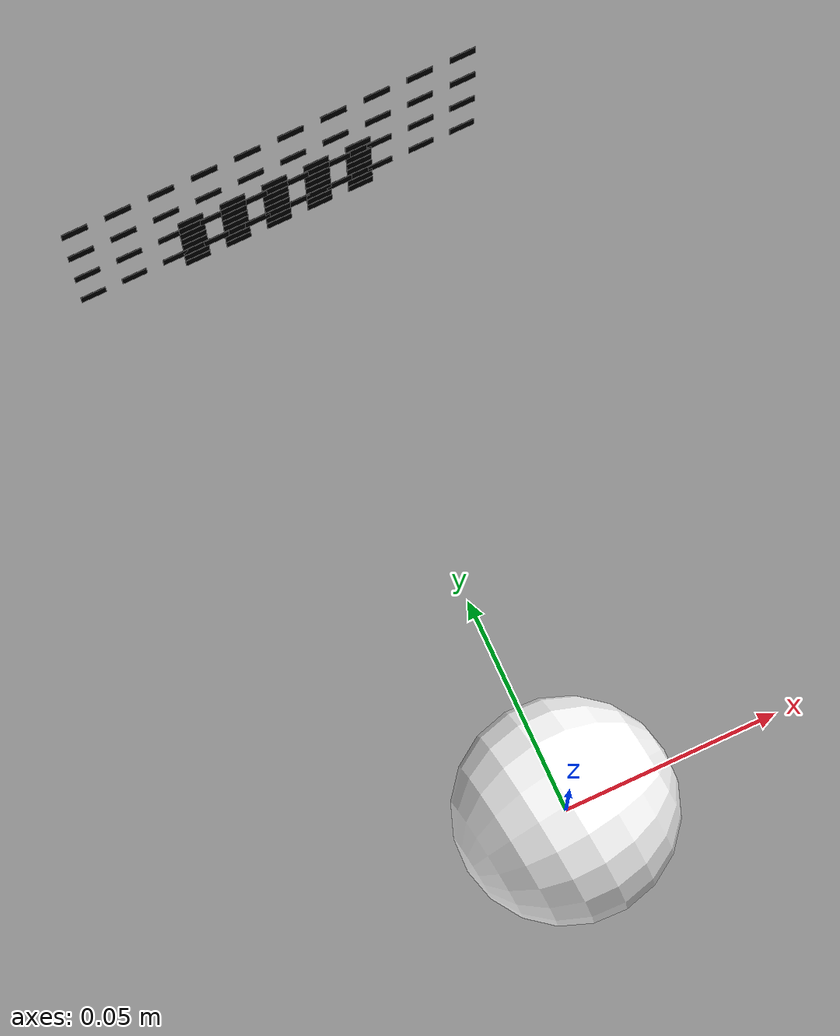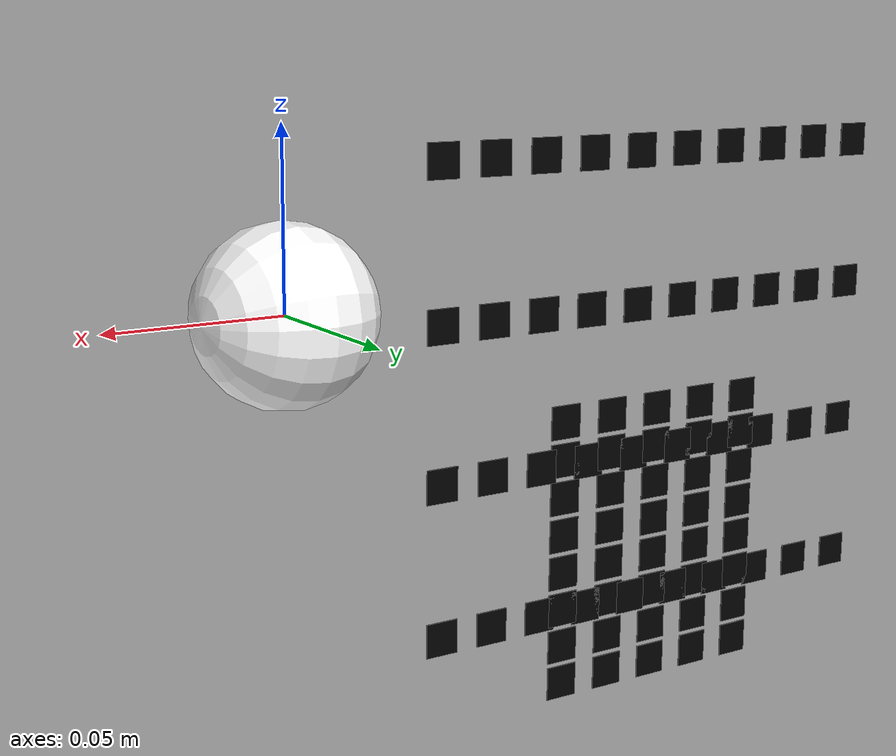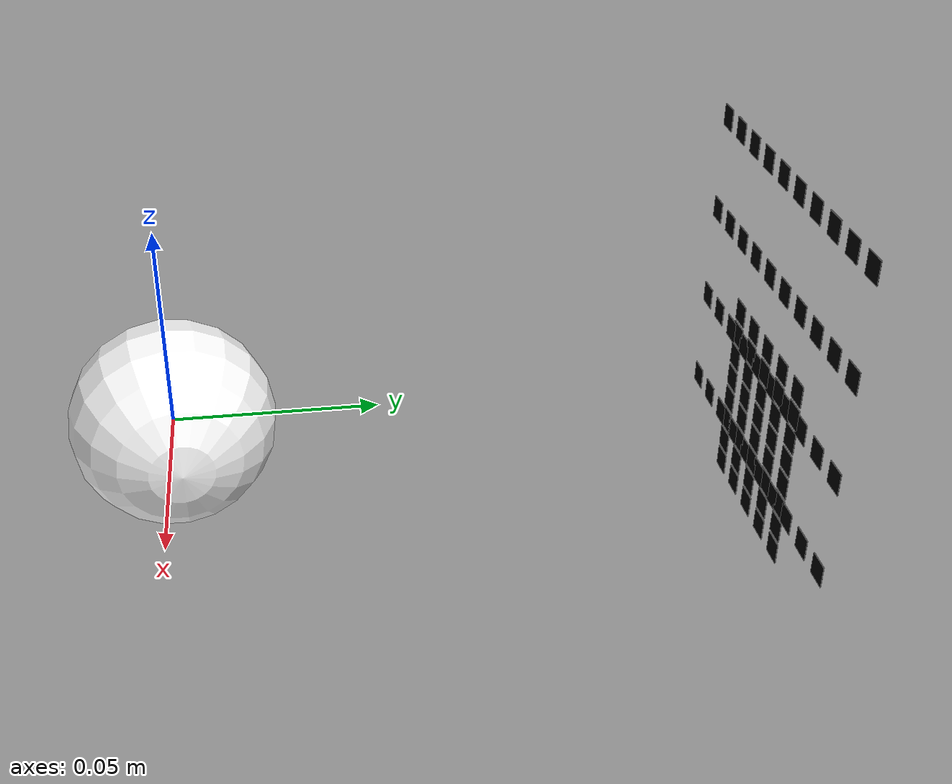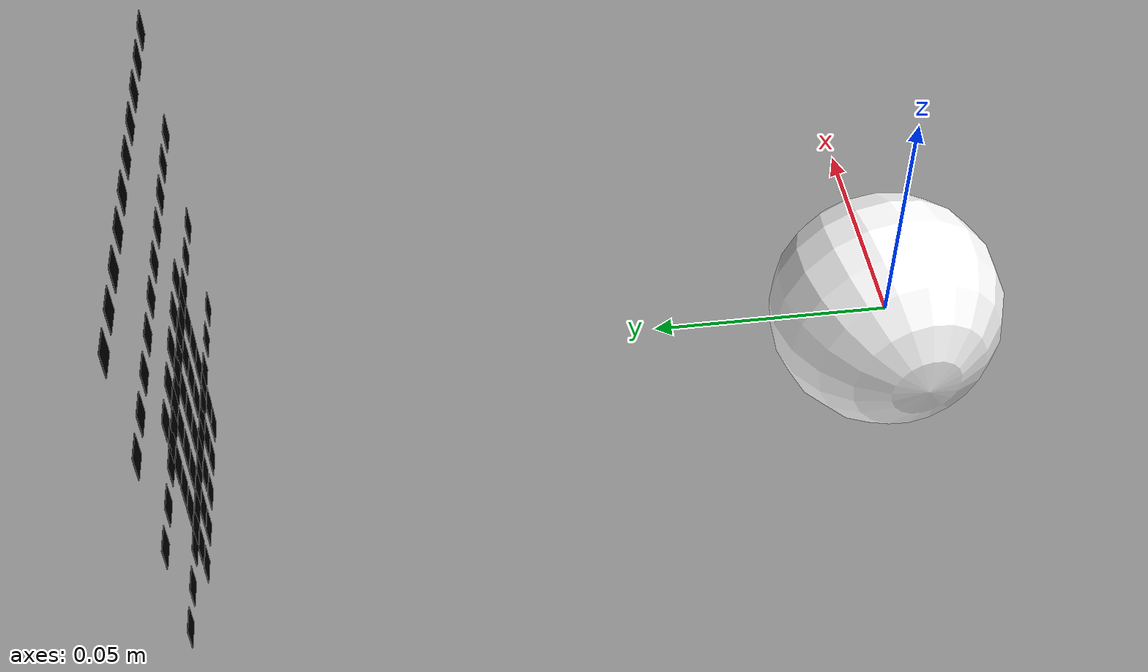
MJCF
<?xml version="1.0"?>
<mujoco>
    <compiler angle="radian"/>
    <option collision="all" timestep="0.002"/>
    <size njmax="1000" nconmax="400"/>
    <default class="main">
        <default class="head">
            <joint type="slide" stiffness="0.0" damping="0.5" armature="0.0" limited="true" range="0 1"/>
        </default>

        <default class="eye">
            <position ctrllimited="true" kp="5"/>
            <joint type="hinge" stiffness="0.0" damping="0.5" armature="0.0" limited="true"/>
        </default>

        <default class="smart-glass-grid">
            <geom type="box" size="0.0030 0.0001 0.0030" rgba="0 0 0 1"/>
        </default>

        <default class="background-grid">
            <geom type="box" size="0.008 0.0001 0.008" rgba="1 1 1 0"/>
        </default>
    </default>
    <asset>
        <texture type="skybox" builtin="gradient" rgb1="1 1 1" rgb2="0.6 0.8 1" width="256" height="256"/>
        <texture type="cube" name="blue-eye" file="assets/blue_eye_texture_circle.png" gridsize="3 4" gridlayout=".U..LFRB.D.."/>
        <material name="blue-eye" texture="blue-eye" texuniform="true"/>
        <mesh name="eye" file="assets/basic_eye_2.stl" scale="0.05 0.05 0.05"/>
    </asset>
    <worldbody>
        <light name="scene_directional_light" directional="true" castshadow="false" cutoff="4" exponent="20"
               diffuse="1 1 1" specular="0 0 0" pos=".9 .3 2.5"/>

        <camera name="env" pos="0.35 -0.35 0.15" euler="1.4 0.5 0.12"/>

        <body name="head" pos="0 0 0">
            <body name="eye" pos="0 0 0" quat="0.7071068 0.7071068 0 0">
                <geom name="eye" type="sphere" size="0.025" material="blue-eye" rgba="1 1 1 1" quat="0.6625191 0.0130711 0.7488417 0.0115643"/>
                <camera name="eye" fovy="90"/>
                <joint name="eye-joint-x" class="eye" axis="1 0 0" range="-1.0 1.0"/>
                <joint name="eye-joint-y" class="eye" axis="0 1 0" range="-1.0 1.0"/>
                <site name="rangefinder-site" quat="0 0 1 0"/>
            </body>

            <body name="smart-glass-pane-interline-spacing-100" pos="0 0.15 0">
                <geom name="grid-11" pos="-0.045 0 0.0536" class="smart-glass-grid"/>
                <geom name="grid-12" pos="-0.035 0 0.0536" class="smart-glass-grid"/>
                <geom name="grid-13" pos="-0.025 0 0.0536" class="smart-glass-grid"/>
                <geom name="grid-14" pos="-0.015 0 0.0536" class="smart-glass-grid"/>
                <geom name="grid-15" pos="-0.005 0 0.0536" class="smart-glass-grid"/>
                <geom name="grid-16" pos="0.005 0 0.0536" class="smart-glass-grid"/>
                <geom name="grid-17" pos="0.015 0 0.0536" class="smart-glass-grid"/>
                <geom name="grid-18" pos="0.025 0 0.0536" class="smart-glass-grid"/>
                <geom name="grid-19" pos="0.035 0 0.0536" class="smart-glass-grid"/>
                <geom name="grid-20" pos="0.045 0 0.0536" class="smart-glass-grid"/>

                <geom name="grid-41" pos="-0.045 0 0.0268" class="smart-glass-grid"/>
                <geom name="grid-42" pos="-0.035 0 0.0268" class="smart-glass-grid"/>
                <geom name="grid-43" pos="-0.025 0 0.0268" class="smart-glass-grid"/>
                <geom name="grid-44" pos="-0.015 0 0.0268" class="smart-glass-grid"/>
                <geom name="grid-45" pos="-0.005 0 0.0268" class="smart-glass-grid"/>
                <geom name="grid-46" pos="0.005 0 0.0268" class="smart-glass-grid"/>
                <geom name="grid-47" pos="0.015 0 0.0268" class="smart-glass-grid"/>
                <geom name="grid-48" pos="0.025 0 0.0268" class="smart-glass-grid"/>
                <geom name="grid-49" pos="0.035 0 0.0268" class="smart-glass-grid"/>
                <geom name="grid-50" pos="0.045 0 0.0268" class="smart-glass-grid"/>

                <geom name="grid-71" pos="-0.045 0 0" class="smart-glass-grid"/>
                <geom name="grid-72" pos="-0.035 0 0" class="smart-glass-grid"/>
                <geom name="grid-73" pos="-0.025 0 0" class="smart-glass-grid"/>
                <geom name="grid-74" pos="-0.015 0 0" class="smart-glass-grid"/>
                <geom name="grid-75" pos="-0.005 0 0" class="smart-glass-grid"/>
                <geom name="grid-76" pos="0.005 0 0" class="smart-glass-grid"/>
                <geom name="grid-77" pos="0.015 0 0" class="smart-glass-grid"/>
                <geom name="grid-78" pos="0.025 0 0" class="smart-glass-grid"/>
                <geom name="grid-79" pos="0.035 0 0" class="smart-glass-grid"/>
                <geom name="grid-80" pos="0.045 0 0" class="smart-glass-grid"/>

                <geom name="grid-101" pos="-0.045 0 -0.0268" class="smart-glass-grid"/>
                <geom name="grid-102" pos="-0.035 0 -0.0268" class="smart-glass-grid"/>
                <geom name="grid-103" pos="-0.025 0 -0.0268" class="smart-glass-grid"/>
                <geom name="grid-104" pos="-0.015 0 -0.0268" class="smart-glass-grid"/>
                <geom name="grid-105" pos="-0.005 0 -0.0268" class="smart-glass-grid"/>
                <geom name="grid-106" pos="0.005 0 -0.0268" class="smart-glass-grid"/>
                <geom name="grid-107" pos="0.015 0 -0.0268" class="smart-glass-grid"/>
                <geom name="grid-108" pos="0.025 0 -0.0268" class="smart-glass-grid"/>
                <geom name="grid-109" pos="0.035 0 -0.0268" class="smart-glass-grid"/>
                <geom name="grid-110" pos="0.045 0 -0.0268" class="smart-glass-grid"/>

            </body>

            <body name="smart-glass-pane-bottom-center" pos="0 0.15 0.0076">
                <geom name="grid-156" pos="-0.02 0 0.0" class="smart-glass-grid"/>
                <geom name="grid-157" pos="-0.01 0 0.0" class="smart-glass-grid"/>
                <geom name="grid-158" pos="0.0 0 0.0" class="smart-glass-grid"/>
                <geom name="grid-159" pos="0.01 0 0.0" class="smart-glass-grid"/>
                <geom name="grid-160" pos="0.02 0 0.0" class="smart-glass-grid"/>

                <geom name="grid-171" pos="-0.02 0 -0.0068" class="smart-glass-grid"/>
                <geom name="grid-172" pos="-0.01 0 -0.0068" class="smart-glass-grid"/>
                <geom name="grid-173" pos="0.0 0 -0.0068" class="smart-glass-grid"/>
                <geom name="grid-174" pos="0.01 0 -0.0068" class="smart-glass-grid"/>
                <geom name="grid-175" pos="0.02 0 -0.0068" class="smart-glass-grid"/>

                <geom name="grid-186" pos="-0.02 0 -0.0136" class="smart-glass-grid"/>
                <geom name="grid-187" pos="-0.01 0 -0.0136" class="smart-glass-grid"/>
                <geom name="grid-188" pos="0.0 0 -0.0136" class="smart-glass-grid"/>
                <geom name="grid-189" pos="0.01 0 -0.0136" class="smart-glass-grid"/>
                <geom name="grid-190" pos="0.02 0 -0.0136" class="smart-glass-grid"/>

                <geom name="grid-201" pos="-0.02 0 -0.0204" class="smart-glass-grid"/>
                <geom name="grid-202" pos="-0.01 0 -0.0204" class="smart-glass-grid"/>
                <geom name="grid-203" pos="0.0 0 -0.0204" class="smart-glass-grid"/>
                <geom name="grid-204" pos="0.01 0 -0.0204" class="smart-glass-grid"/>
                <geom name="grid-205" pos="0.02 0 -0.0204" class="smart-glass-grid"/>

                <geom name="grid-216" pos="-0.02 0 -0.0272" class="smart-glass-grid"/>
                <geom name="grid-217" pos="-0.01 0 -0.0272" class="smart-glass-grid"/>
                <geom name="grid-218" pos="0.0 0 -0.0272" class="smart-glass-grid"/>
                <geom name="grid-219" pos="0.01 0 -0.0272" class="smart-glass-grid"/>
                <geom name="grid-220" pos="0.02 0 -0.0272" class="smart-glass-grid"/>

                <geom name="grid-231" pos="-0.02 0 -0.034" class="smart-glass-grid"/>
                <geom name="grid-232" pos="-0.01 0 -0.034" class="smart-glass-grid"/>
                <geom name="grid-233" pos="0.0 0 -0.034" class="smart-glass-grid"/>
                <geom name="grid-234" pos="0.01 0 -0.034" class="smart-glass-grid"/>
                <geom name="grid-235" pos="0.02 0 -0.034" class="smart-glass-grid"/>

                <geom name="grid-246" pos="-0.02 0 -0.0408" class="smart-glass-grid"/>
                <geom name="grid-247" pos="-0.01 0 -0.0408" class="smart-glass-grid"/>
                <geom name="grid-248" pos="0.0 0 -0.0408" class="smart-glass-grid"/>
                <geom name="grid-249" pos="0.01 0 -0.0408" class="smart-glass-grid"/>
                <geom name="grid-250" pos="0.02 0 -0.0408" class="smart-glass-grid"/>

                <geom name="grid-261" pos="-0.02 0 -0.0476" class="smart-glass-grid"/>
                <geom name="grid-262" pos="-0.01 0 -0.0476" class="smart-glass-grid"/>
                <geom name="grid-263" pos="0.0 0 -0.0476" class="smart-glass-grid"/>
                <geom name="grid-264" pos="0.01 0 -0.0476" class="smart-glass-grid"/>
                <geom name="grid-265" pos="0.02 0 -0.0476" class="smart-glass-grid"/>

            </body>

        </body>

        <body name="background-pane" pos="0 0.12 0">
            <geom name="grid-bgp" pos="-0 0 0" class="background-grid"/>
        </body>

    </worldbody>
    <actuator>
        <position name="eye-x-motor" joint="eye-joint-x" class="eye" ctrlrange="-1.0 1.0"/>
        <position name="eye-y-motor" joint="eye-joint-y" class="eye" ctrlrange="-1.0 1.0"/>
    </actuator>
    <sensor>
        <rangefinder name="rangefinder" site="rangefinder-site"/>
    </sensor>
</mujoco>
